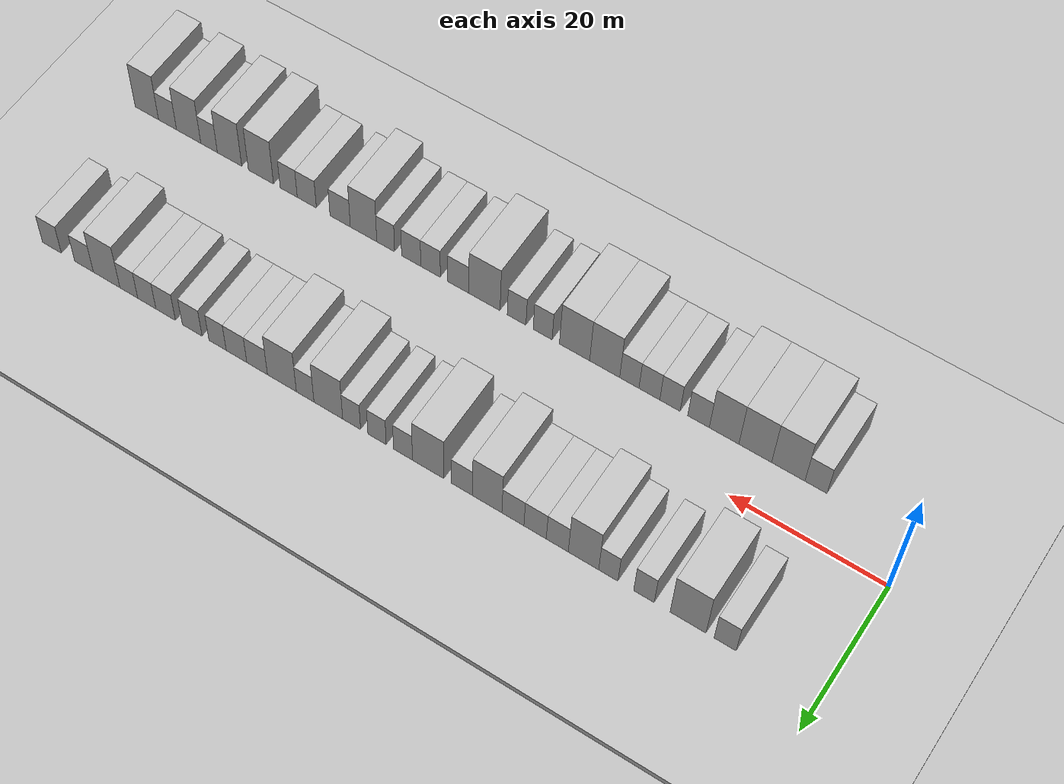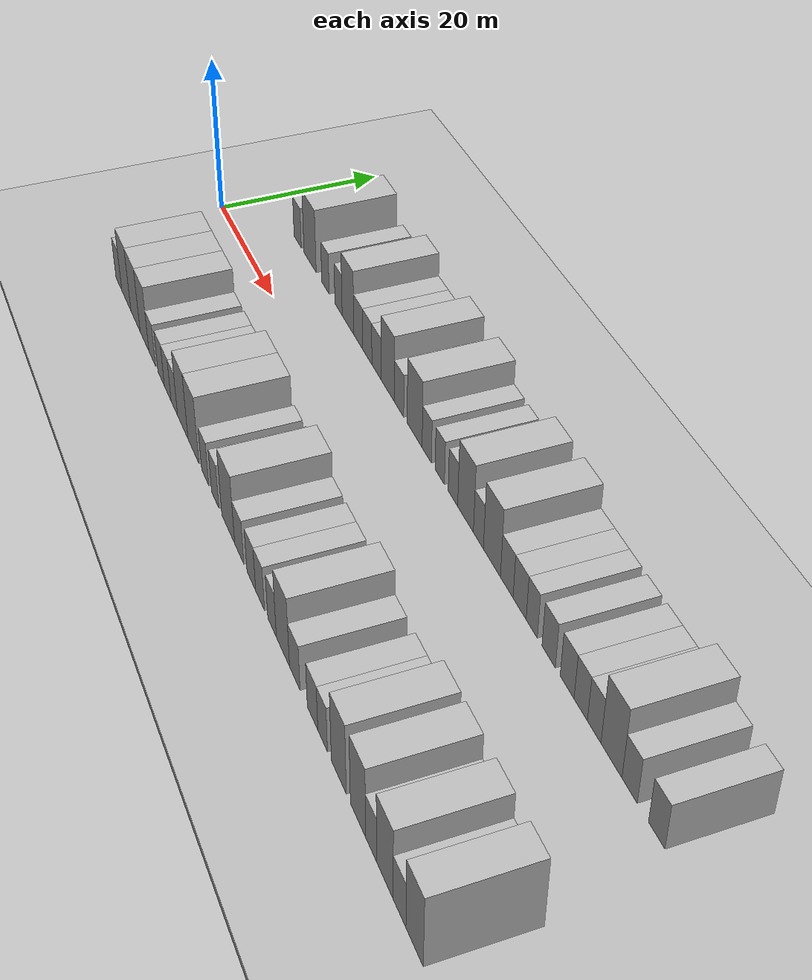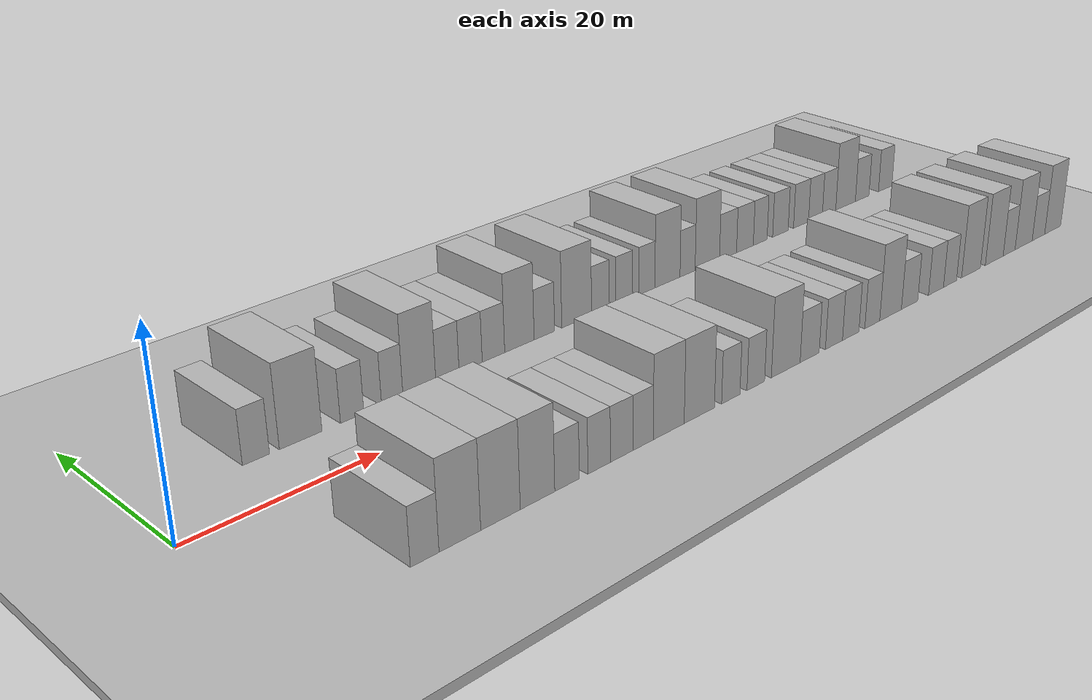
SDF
<sdf version="1.6">
 <world name="default">
  <include><name>ground_plane_1</name><uri>model://HANNAS_ground_plane</uri></include>
  <include>
   <name>ground_plane_2</name>
   <uri>model://HANNAS_ground_plane</uri>
   <pose>100 0 0  0 0 0</pose>
  </include>
  <model name="building_1">
   <static>1</static>
   <pose>11.3619 11.0000 0 0.000000 0.000000 1.570796</pose>
   <link name="link">
    <pose>0 0 3.00 0 0 0</pose>
    <collision name="collision"><geometry><box><size>10.0000 2.7237 6.0000</size></box></geometry></collision>
    <visual name="visual">
     <cast_shadows>0</cast_shadows>
     <geometry><box><size>10.0000 2.7237 6.0000</size></box></geometry>
     <material>
      <script>
       <uri>model://HANNAS_wall/materials/scripts</uri>
       <uri>model://HANNAS_wall/materials/textures</uri>
       <name>vrc/HANNAS_wall</name>
      </script>
     </material>
    </visual>
   </link>
  </model>
  <model name="building_2">
   <static>1</static>
   <pose>15.9564 11.0000 0 0.000000 0.000000 1.570796</pose>
   <link name="link">
    <pose>0 0 4.50 0 0 0</pose>
    <collision name="collision"><geometry><box><size>10.0000 4.4653 9.0000</size></box></geometry></collision>
    <visual name="visual">
     <cast_shadows>0</cast_shadows>
     <geometry><box><size>10.0000 4.4653 9.0000</size></box></geometry>
     <material>
      <script>
       <uri>model://HANNAS_wall/materials/scripts</uri>
       <uri>model://HANNAS_wall/materials/textures</uri>
       <name>vrc/HANNAS_wall</name>
      </script>
     </material>
    </visual>
   </link>
  </model>
  <model name="building_3">
   <static>1</static>
   <pose>21.4835 11.0000 0 0.000000 0.000000 1.570796</pose>
   <link name="link">
    <pose>0 0 3.00 0 0 0</pose>
    <collision name="collision"><geometry><box><size>10.0000 2.5890 6.0000</size></box></geometry></collision>
    <visual name="visual">
     <cast_shadows>0</cast_shadows>
     <geometry><box><size>10.0000 2.5890 6.0000</size></box></geometry>
     <material>
      <script>
       <uri>model://HANNAS_wall/materials/scripts</uri>
       <uri>model://HANNAS_wall/materials/textures</uri>
       <name>vrc/HANNAS_wall</name>
      </script>
     </material>
    </visual>
   </link>
  </model>
  <model name="building_4">
   <static>1</static>
   <pose>26.0084 11.0000 0 0.000000 0.000000 1.570796</pose>
   <link name="link">
    <pose>0 0 3.00 0 0 0</pose>
    <collision name="collision"><geometry><box><size>10.0000 2.4608 6.0000</size></box></geometry></collision>
    <visual name="visual">
     <cast_shadows>0</cast_shadows>
     <geometry><box><size>10.0000 2.4608 6.0000</size></box></geometry>
     <material>
      <script>
       <uri>model://HANNAS_wall/materials/scripts</uri>
       <uri>model://HANNAS_wall/materials/textures</uri>
       <name>vrc/HANNAS_wall</name>
      </script>
     </material>
    </visual>
   </link>
  </model>
  <model name="building_5">
   <static>1</static>
   <pose>29.1895 11.0000 0 0.000000 0.000000 1.570796</pose>
   <link name="link">
    <pose>0 0 4.50 0 0 0</pose>
    <collision name="collision"><geometry><box><size>10.0000 3.9013 9.0000</size></box></geometry></collision>
    <visual name="visual">
     <cast_shadows>0</cast_shadows>
     <geometry><box><size>10.0000 3.9013 9.0000</size></box></geometry>
     <material>
      <script>
       <uri>model://HANNAS_wall/materials/scripts</uri>
       <uri>model://HANNAS_wall/materials/textures</uri>
       <name>vrc/HANNAS_wall</name>
      </script>
     </material>
    </visual>
   </link>
  </model>
  <model name="building_6">
   <static>1</static>
   <pose>32.5640 11.0000 0 0.000000 0.000000 1.570796</pose>
   <link name="link">
    <pose>0 0 3.00 0 0 0</pose>
    <collision name="collision"><geometry><box><size>10.0000 2.8478 6.0000</size></box></geometry></collision>
    <visual name="visual">
     <cast_shadows>0</cast_shadows>
     <geometry><box><size>10.0000 2.8478 6.0000</size></box></geometry>
     <material>
      <script>
       <uri>model://HANNAS_wall/materials/scripts</uri>
       <uri>model://HANNAS_wall/materials/textures</uri>
       <name>vrc/HANNAS_wall</name>
      </script>
     </material>
    </visual>
   </link>
  </model>
  <model name="building_7">
   <static>1</static>
   <pose>35.4418 11.0000 0 0.000000 0.000000 1.570796</pose>
   <link name="link">
    <pose>0 0 3.00 0 0 0</pose>
    <collision name="collision"><geometry><box><size>10.0000 2.9078 6.0000</size></box></geometry></collision>
    <visual name="visual">
     <cast_shadows>0</cast_shadows>
     <geometry><box><size>10.0000 2.9078 6.0000</size></box></geometry>
     <material>
      <script>
       <uri>model://HANNAS_wall/materials/scripts</uri>
       <uri>model://HANNAS_wall/materials/textures</uri>
       <name>vrc/HANNAS_wall</name>
      </script>
     </material>
    </visual>
   </link>
  </model>
  <model name="building_8">
   <static>1</static>
   <pose>38.3424 11.0000 0 0.000000 0.000000 1.570796</pose>
   <link name="link">
    <pose>0 0 3.00 0 0 0</pose>
    <collision name="collision"><geometry><box><size>10.0000 2.8935 6.0000</size></box></geometry></collision>
    <visual name="visual">
     <cast_shadows>0</cast_shadows>
     <geometry><box><size>10.0000 2.8935 6.0000</size></box></geometry>
     <material>
      <script>
       <uri>model://HANNAS_wall/materials/scripts</uri>
       <uri>model://HANNAS_wall/materials/textures</uri>
       <name>vrc/HANNAS_wall</name>
      </script>
     </material>
    </visual>
   </link>
  </model>
  <model name="building_9">
   <static>1</static>
   <pose>41.7459 11.0000 0 0.000000 0.000000 1.570796</pose>
   <link name="link">
    <pose>0 0 4.50 0 0 0</pose>
    <collision name="collision"><geometry><box><size>10.0000 3.9136 9.0000</size></box></geometry></collision>
    <visual name="visual">
     <cast_shadows>0</cast_shadows>
     <geometry><box><size>10.0000 3.9136 9.0000</size></box></geometry>
     <material>
      <script>
       <uri>model://HANNAS_wall/materials/scripts</uri>
       <uri>model://HANNAS_wall/materials/textures</uri>
       <name>vrc/HANNAS_wall</name>
      </script>
     </material>
    </visual>
   </link>
  </model>
  <model name="building_10">
   <static>1</static>
   <pose>45.0957 11.0000 0 0.000000 0.000000 1.570796</pose>
   <link name="link">
    <pose>0 0 3.00 0 0 0</pose>
    <collision name="collision"><geometry><box><size>10.0000 2.7859 6.0000</size></box></geometry></collision>
    <visual name="visual">
     <cast_shadows>0</cast_shadows>
     <geometry><box><size>10.0000 2.7859 6.0000</size></box></geometry>
     <material>
      <script>
       <uri>model://HANNAS_wall/materials/scripts</uri>
       <uri>model://HANNAS_wall/materials/textures</uri>
       <name>vrc/HANNAS_wall</name>
      </script>
     </material>
    </visual>
   </link>
  </model>
  <model name="building_11">
   <static>1</static>
   <pose>49.6018 11.0000 0 0.000000 0.000000 1.570796</pose>
   <link name="link">
    <pose>0 0 4.50 0 0 0</pose>
    <collision name="collision"><geometry><box><size>10.0000 4.2262 9.0000</size></box></geometry></collision>
    <visual name="visual">
     <cast_shadows>0</cast_shadows>
     <geometry><box><size>10.0000 4.2262 9.0000</size></box></geometry>
     <material>
      <script>
       <uri>model://HANNAS_wall/materials/scripts</uri>
       <uri>model://HANNAS_wall/materials/textures</uri>
       <name>vrc/HANNAS_wall</name>
      </script>
     </material>
    </visual>
   </link>
  </model>
  <model name="building_12">
   <static>1</static>
   <pose>52.9961 11.0000 0 0.000000 0.000000 1.570796</pose>
   <link name="link">
    <pose>0 0 3.00 0 0 0</pose>
    <collision name="collision"><geometry><box><size>10.0000 2.5625 6.0000</size></box></geometry></collision>
    <visual name="visual">
     <cast_shadows>0</cast_shadows>
     <geometry><box><size>10.0000 2.5625 6.0000</size></box></geometry>
     <material>
      <script>
       <uri>model://HANNAS_wall/materials/scripts</uri>
       <uri>model://HANNAS_wall/materials/textures</uri>
       <name>vrc/HANNAS_wall</name>
      </script>
     </material>
    </visual>
   </link>
  </model>
  <model name="building_13">
   <static>1</static>
   <pose>56.5271 11.0000 0 0.000000 0.000000 1.570796</pose>
   <link name="link">
    <pose>0 0 3.00 0 0 0</pose>
    <collision name="collision"><geometry><box><size>10.0000 2.4995 6.0000</size></box></geometry></collision>
    <visual name="visual">
     <cast_shadows>0</cast_shadows>
     <geometry><box><size>10.0000 2.4995 6.0000</size></box></geometry>
     <material>
      <script>
       <uri>model://HANNAS_wall/materials/scripts</uri>
       <uri>model://HANNAS_wall/materials/textures</uri>
       <name>vrc/HANNAS_wall</name>
      </script>
     </material>
    </visual>
   </link>
  </model>
  <model name="building_14">
   <static>1</static>
   <pose>60.0050 11.0000 0 0.000000 0.000000 1.570796</pose>
   <link name="link">
    <pose>0 0 3.00 0 0 0</pose>
    <collision name="collision"><geometry><box><size>10.0000 2.4562 6.0000</size></box></geometry></collision>
    <visual name="visual">
     <cast_shadows>0</cast_shadows>
     <geometry><box><size>10.0000 2.4562 6.0000</size></box></geometry>
     <material>
      <script>
       <uri>model://HANNAS_wall/materials/scripts</uri>
       <uri>model://HANNAS_wall/materials/textures</uri>
       <name>vrc/HANNAS_wall</name>
      </script>
     </material>
    </visual>
   </link>
  </model>
  <model name="building_15">
   <static>1</static>
   <pose>63.2275 11.0000 0 0.000000 0.000000 1.570796</pose>
   <link name="link">
    <pose>0 0 4.50 0 0 0</pose>
    <collision name="collision"><geometry><box><size>10.0000 3.9888 9.0000</size></box></geometry></collision>
    <visual name="visual">
     <cast_shadows>0</cast_shadows>
     <geometry><box><size>10.0000 3.9888 9.0000</size></box></geometry>
     <material>
      <script>
       <uri>model://HANNAS_wall/materials/scripts</uri>
       <uri>model://HANNAS_wall/materials/textures</uri>
       <name>vrc/HANNAS_wall</name>
      </script>
     </material>
    </visual>
   </link>
  </model>
  <model name="building_16">
   <static>1</static>
   <pose>66.4500 11.0000 0 0.000000 0.000000 1.570796</pose>
   <link name="link">
    <pose>0 0 3.00 0 0 0</pose>
    <collision name="collision"><geometry><box><size>10.0000 2.4563 6.0000</size></box></geometry></collision>
    <visual name="visual">
     <cast_shadows>0</cast_shadows>
     <geometry><box><size>10.0000 2.4563 6.0000</size></box></geometry>
     <material>
      <script>
       <uri>model://HANNAS_wall/materials/scripts</uri>
       <uri>model://HANNAS_wall/materials/textures</uri>
       <name>vrc/HANNAS_wall</name>
      </script>
     </material>
    </visual>
   </link>
  </model>
  <model name="building_17">
   <static>1</static>
   <pose>69.7121 11.0000 0 0.000000 0.000000 1.570796</pose>
   <link name="link">
    <pose>0 0 4.50 0 0 0</pose>
    <collision name="collision"><geometry><box><size>10.0000 4.0678 9.0000</size></box></geometry></collision>
    <visual name="visual">
     <cast_shadows>0</cast_shadows>
     <geometry><box><size>10.0000 4.0678 9.0000</size></box></geometry>
     <material>
      <script>
       <uri>model://HANNAS_wall/materials/scripts</uri>
       <uri>model://HANNAS_wall/materials/textures</uri>
       <name>vrc/HANNAS_wall</name>
      </script>
     </material>
    </visual>
   </link>
  </model>
  <model name="building_18">
   <static>1</static>
   <pose>73.2113 11.0000 0 0.000000 0.000000 1.570796</pose>
   <link name="link">
    <pose>0 0 3.00 0 0 0</pose>
    <collision name="collision"><geometry><box><size>10.0000 2.9305 6.0000</size></box></geometry></collision>
    <visual name="visual">
     <cast_shadows>0</cast_shadows>
     <geometry><box><size>10.0000 2.9305 6.0000</size></box></geometry>
     <material>
      <script>
       <uri>model://HANNAS_wall/materials/scripts</uri>
       <uri>model://HANNAS_wall/materials/textures</uri>
       <name>vrc/HANNAS_wall</name>
      </script>
     </material>
    </visual>
   </link>
  </model>
  <model name="building_19">
   <static>1</static>
   <pose>76.1501 11.0000 0 0.000000 0.000000 1.570796</pose>
   <link name="link">
    <pose>0 0 3.00 0 0 0</pose>
    <collision name="collision"><geometry><box><size>10.0000 2.9472 6.0000</size></box></geometry></collision>
    <visual name="visual">
     <cast_shadows>0</cast_shadows>
     <geometry><box><size>10.0000 2.9472 6.0000</size></box></geometry>
     <material>
      <script>
       <uri>model://HANNAS_wall/materials/scripts</uri>
       <uri>model://HANNAS_wall/materials/textures</uri>
       <name>vrc/HANNAS_wall</name>
      </script>
     </material>
    </visual>
   </link>
  </model>
  <model name="building_20">
   <static>1</static>
   <pose>78.8567 11.0000 0 0.000000 0.000000 1.570796</pose>
   <link name="link">
    <pose>0 0 3.00 0 0 0</pose>
    <collision name="collision"><geometry><box><size>10.0000 2.4658 6.0000</size></box></geometry></collision>
    <visual name="visual">
     <cast_shadows>0</cast_shadows>
     <geometry><box><size>10.0000 2.4658 6.0000</size></box></geometry>
     <material>
      <script>
       <uri>model://HANNAS_wall/materials/scripts</uri>
       <uri>model://HANNAS_wall/materials/textures</uri>
       <name>vrc/HANNAS_wall</name>
      </script>
     </material>
    </visual>
   </link>
  </model>
  <model name="building_21">
   <static>1</static>
   <pose>82.5169 11.0000 0 0.000000 0.000000 1.570796</pose>
   <link name="link">
    <pose>0 0 3.00 0 0 0</pose>
    <collision name="collision"><geometry><box><size>10.0000 2.8547 6.0000</size></box></geometry></collision>
    <visual name="visual">
     <cast_shadows>0</cast_shadows>
     <geometry><box><size>10.0000 2.8547 6.0000</size></box></geometry>
     <material>
      <script>
       <uri>model://HANNAS_wall/materials/scripts</uri>
       <uri>model://HANNAS_wall/materials/textures</uri>
       <name>vrc/HANNAS_wall</name>
      </script>
     </material>
    </visual>
   </link>
  </model>
  <model name="building_22">
   <static>1</static>
   <pose>86.3643 11.0000 0 0.000000 0.000000 1.570796</pose>
   <link name="link">
    <pose>0 0 3.00 0 0 0</pose>
    <collision name="collision"><geometry><box><size>10.0000 2.8400 6.0000</size></box></geometry></collision>
    <visual name="visual">
     <cast_shadows>0</cast_shadows>
     <geometry><box><size>10.0000 2.8400 6.0000</size></box></geometry>
     <material>
      <script>
       <uri>model://HANNAS_wall/materials/scripts</uri>
       <uri>model://HANNAS_wall/materials/textures</uri>
       <name>vrc/HANNAS_wall</name>
      </script>
     </material>
    </visual>
   </link>
  </model>
  <model name="building_23">
   <static>1</static>
   <pose>89.1174 11.0000 0 0.000000 0.000000 1.570796</pose>
   <link name="link">
    <pose>0 0 3.00 0 0 0</pose>
    <collision name="collision"><geometry><box><size>10.0000 2.6662 6.0000</size></box></geometry></collision>
    <visual name="visual">
     <cast_shadows>0</cast_shadows>
     <geometry><box><size>10.0000 2.6662 6.0000</size></box></geometry>
     <material>
      <script>
       <uri>model://HANNAS_wall/materials/scripts</uri>
       <uri>model://HANNAS_wall/materials/textures</uri>
       <name>vrc/HANNAS_wall</name>
      </script>
     </material>
    </visual>
   </link>
  </model>
  <model name="building_24">
   <static>1</static>
   <pose>91.7686 11.0000 0 0.000000 0.000000 1.570796</pose>
   <link name="link">
    <pose>0 0 3.00 0 0 0</pose>
    <collision name="collision"><geometry><box><size>10.0000 2.6361 6.0000</size></box></geometry></collision>
    <visual name="visual">
     <cast_shadows>0</cast_shadows>
     <geometry><box><size>10.0000 2.6361 6.0000</size></box></geometry>
     <material>
      <script>
       <uri>model://HANNAS_wall/materials/scripts</uri>
       <uri>model://HANNAS_wall/materials/textures</uri>
       <name>vrc/HANNAS_wall</name>
      </script>
     </material>
    </visual>
   </link>
  </model>
  <model name="building_25">
   <static>1</static>
   <pose>95.0623 11.0000 0 0.000000 0.000000 1.570796</pose>
   <link name="link">
    <pose>0 0 4.50 0 0 0</pose>
    <collision name="collision"><geometry><box><size>10.0000 3.9512 9.0000</size></box></geometry></collision>
    <visual name="visual">
     <cast_shadows>0</cast_shadows>
     <geometry><box><size>10.0000 3.9512 9.0000</size></box></geometry>
     <material>
      <script>
       <uri>model://HANNAS_wall/materials/scripts</uri>
       <uri>model://HANNAS_wall/materials/textures</uri>
       <name>vrc/HANNAS_wall</name>
      </script>
     </material>
    </visual>
   </link>
  </model>
  <model name="building_26">
   <static>1</static>
   <pose>98.4367 11.0000 0 0.000000 0.000000 1.570796</pose>
   <link name="link">
    <pose>0 0 3.00 0 0 0</pose>
    <collision name="collision"><geometry><box><size>10.0000 2.7976 6.0000</size></box></geometry></collision>
    <visual name="visual">
     <cast_shadows>0</cast_shadows>
     <geometry><box><size>10.0000 2.7976 6.0000</size></box></geometry>
     <material>
      <script>
       <uri>model://HANNAS_wall/materials/scripts</uri>
       <uri>model://HANNAS_wall/materials/textures</uri>
       <name>vrc/HANNAS_wall</name>
      </script>
     </material>
    </visual>
   </link>
  </model>
  <model name="building_27">
   <static>1</static>
   <pose>103.2614 11.0000 0 0.000000 0.000000 1.570796</pose>
   <link name="link">
    <pose>0 0 3.00 0 0 0</pose>
    <collision name="collision"><geometry><box><size>10.0000 2.8519 6.0000</size></box></geometry></collision>
    <visual name="visual">
     <cast_shadows>0</cast_shadows>
     <geometry><box><size>10.0000 2.8519 6.0000</size></box></geometry>
     <material>
      <script>
       <uri>model://HANNAS_wall/materials/scripts</uri>
       <uri>model://HANNAS_wall/materials/textures</uri>
       <name>vrc/HANNAS_wall</name>
      </script>
     </material>
    </visual>
   </link>
  </model>
  <model name="building_56">
   <static>1</static>
   <pose>12.4048 -11.0000 0 0.000000 0.000000 1.570796</pose>
   <link name="link">
    <pose>0 0 3.00 0 0 0</pose>
    <collision name="collision"><geometry><box><size>10.0000 2.8097 6.0000</size></box></geometry></collision>
    <visual name="visual">
     <cast_shadows>0</cast_shadows>
     <geometry><box><size>10.0000 2.8097 6.0000</size></box></geometry>
     <material>
      <script>
       <uri>model://HANNAS_wall/materials/scripts</uri>
       <uri>model://HANNAS_wall/materials/textures</uri>
       <name>vrc/HANNAS_wall</name>
      </script>
     </material>
    </visual>
   </link>
  </model>
  <model name="building_57">
   <static>1</static>
   <pose>15.9327 -11.0000 0 0.000000 0.000000 1.570796</pose>
   <link name="link">
    <pose>0 0 4.50 0 0 0</pose>
    <collision name="collision"><geometry><box><size>10.0000 4.2461 9.0000</size></box></geometry></collision>
    <visual name="visual">
     <cast_shadows>0</cast_shadows>
     <geometry><box><size>10.0000 4.2461 9.0000</size></box></geometry>
     <material>
      <script>
       <uri>model://HANNAS_wall/materials/scripts</uri>
       <uri>model://HANNAS_wall/materials/textures</uri>
       <name>vrc/HANNAS_wall</name>
      </script>
     </material>
    </visual>
   </link>
  </model>
  <model name="building_58">
   <static>1</static>
   <pose>20.1625 -11.0000 0 0.000000 0.000000 1.570796</pose>
   <link name="link">
    <pose>0 0 4.50 0 0 0</pose>
    <collision name="collision"><geometry><box><size>10.0000 4.2135 9.0000</size></box></geometry></collision>
    <visual name="visual">
     <cast_shadows>0</cast_shadows>
     <geometry><box><size>10.0000 4.2135 9.0000</size></box></geometry>
     <material>
      <script>
       <uri>model://HANNAS_wall/materials/scripts</uri>
       <uri>model://HANNAS_wall/materials/textures</uri>
       <name>vrc/HANNAS_wall</name>
      </script>
     </material>
    </visual>
   </link>
  </model>
  <model name="building_59">
   <static>1</static>
   <pose>24.1878 -11.0000 0 0.000000 0.000000 1.570796</pose>
   <link name="link">
    <pose>0 0 4.50 0 0 0</pose>
    <collision name="collision"><geometry><box><size>10.0000 3.8370 9.0000</size></box></geometry></collision>
    <visual name="visual">
     <cast_shadows>0</cast_shadows>
     <geometry><box><size>10.0000 3.8370 9.0000</size></box></geometry>
     <material>
      <script>
       <uri>model://HANNAS_wall/materials/scripts</uri>
       <uri>model://HANNAS_wall/materials/textures</uri>
       <name>vrc/HANNAS_wall</name>
      </script>
     </material>
    </visual>
   </link>
  </model>
  <model name="building_60">
   <static>1</static>
   <pose>27.5183 -11.0000 0 0.000000 0.000000 1.570796</pose>
   <link name="link">
    <pose>0 0 3.00 0 0 0</pose>
    <collision name="collision"><geometry><box><size>10.0000 2.8242 6.0000</size></box></geometry></collision>
    <visual name="visual">
     <cast_shadows>0</cast_shadows>
     <geometry><box><size>10.0000 2.8242 6.0000</size></box></geometry>
     <material>
      <script>
       <uri>model://HANNAS_wall/materials/scripts</uri>
       <uri>model://HANNAS_wall/materials/textures</uri>
       <name>vrc/HANNAS_wall</name>
      </script>
     </material>
    </visual>
   </link>
  </model>
  <model name="building_61">
   <static>1</static>
   <pose>31.2732 -11.0000 0 0.000000 0.000000 1.570796</pose>
   <link name="link">
    <pose>0 0 3.00 0 0 0</pose>
    <collision name="collision"><geometry><box><size>10.0000 2.6855 6.0000</size></box></geometry></collision>
    <visual name="visual">
     <cast_shadows>0</cast_shadows>
     <geometry><box><size>10.0000 2.6855 6.0000</size></box></geometry>
     <material>
      <script>
       <uri>model://HANNAS_wall/materials/scripts</uri>
       <uri>model://HANNAS_wall/materials/textures</uri>
       <name>vrc/HANNAS_wall</name>
      </script>
     </material>
    </visual>
   </link>
  </model>
  <model name="building_62">
   <static>1</static>
   <pose>33.9993 -11.0000 0 0.000000 0.000000 1.570796</pose>
   <link name="link">
    <pose>0 0 3.00 0 0 0</pose>
    <collision name="collision"><geometry><box><size>10.0000 2.7667 6.0000</size></box></geometry></collision>
    <visual name="visual">
     <cast_shadows>0</cast_shadows>
     <geometry><box><size>10.0000 2.7667 6.0000</size></box></geometry>
     <material>
      <script>
       <uri>model://HANNAS_wall/materials/scripts</uri>
       <uri>model://HANNAS_wall/materials/textures</uri>
       <name>vrc/HANNAS_wall</name>
      </script>
     </material>
    </visual>
   </link>
  </model>
  <model name="building_63">
   <static>1</static>
   <pose>36.6693 -11.0000 0 0.000000 0.000000 1.570796</pose>
   <link name="link">
    <pose>0 0 3.00 0 0 0</pose>
    <collision name="collision"><geometry><box><size>10.0000 2.5733 6.0000</size></box></geometry></collision>
    <visual name="visual">
     <cast_shadows>0</cast_shadows>
     <geometry><box><size>10.0000 2.5733 6.0000</size></box></geometry>
     <material>
      <script>
       <uri>model://HANNAS_wall/materials/scripts</uri>
       <uri>model://HANNAS_wall/materials/textures</uri>
       <name>vrc/HANNAS_wall</name>
      </script>
     </material>
    </visual>
   </link>
  </model>
  <model name="building_64">
   <static>1</static>
   <pose>39.9777 -11.0000 0 0.000000 0.000000 1.570796</pose>
   <link name="link">
    <pose>0 0 4.50 0 0 0</pose>
    <collision name="collision"><geometry><box><size>10.0000 4.0435 9.0000</size></box></geometry></collision>
    <visual name="visual">
     <cast_shadows>0</cast_shadows>
     <geometry><box><size>10.0000 4.0435 9.0000</size></box></geometry>
     <material>
      <script>
       <uri>model://HANNAS_wall/materials/scripts</uri>
       <uri>model://HANNAS_wall/materials/textures</uri>
       <name>vrc/HANNAS_wall</name>
      </script>
     </material>
    </visual>
   </link>
  </model>
  <model name="building_65">
   <static>1</static>
   <pose>44.0484 -11.0000 0 0.000000 0.000000 1.570796</pose>
   <link name="link">
    <pose>0 0 4.50 0 0 0</pose>
    <collision name="collision"><geometry><box><size>10.0000 4.0979 9.0000</size></box></geometry></collision>
    <visual name="visual">
     <cast_shadows>0</cast_shadows>
     <geometry><box><size>10.0000 4.0979 9.0000</size></box></geometry>
     <material>
      <script>
       <uri>model://HANNAS_wall/materials/scripts</uri>
       <uri>model://HANNAS_wall/materials/textures</uri>
       <name>vrc/HANNAS_wall</name>
      </script>
     </material>
    </visual>
   </link>
  </model>
  <model name="building_66">
   <static>1</static>
   <pose>48.3936 -11.0000 0 0.000000 0.000000 1.570796</pose>
   <link name="link">
    <pose>0 0 3.00 0 0 0</pose>
    <collision name="collision"><geometry><box><size>10.0000 2.5927 6.0000</size></box></geometry></collision>
    <visual name="visual">
     <cast_shadows>0</cast_shadows>
     <geometry><box><size>10.0000 2.5927 6.0000</size></box></geometry>
     <material>
      <script>
       <uri>model://HANNAS_wall/materials/scripts</uri>
       <uri>model://HANNAS_wall/materials/textures</uri>
       <name>vrc/HANNAS_wall</name>
      </script>
     </material>
    </visual>
   </link>
  </model>
  <model name="building_67">
   <static>1</static>
   <pose>51.9815 -11.0000 0 0.000000 0.000000 1.570796</pose>
   <link name="link">
    <pose>0 0 3.00 0 0 0</pose>
    <collision name="collision"><geometry><box><size>10.0000 2.5831 6.0000</size></box></geometry></collision>
    <visual name="visual">
     <cast_shadows>0</cast_shadows>
     <geometry><box><size>10.0000 2.5831 6.0000</size></box></geometry>
     <material>
      <script>
       <uri>model://HANNAS_wall/materials/scripts</uri>
       <uri>model://HANNAS_wall/materials/textures</uri>
       <name>vrc/HANNAS_wall</name>
      </script>
     </material>
    </visual>
   </link>
  </model>
  <model name="building_68">
   <static>1</static>
   <pose>56.4591 -11.0000 0 0.000000 0.000000 1.570796</pose>
   <link name="link">
    <pose>0 0 4.50 0 0 0</pose>
    <collision name="collision"><geometry><box><size>10.0000 4.3722 9.0000</size></box></geometry></collision>
    <visual name="visual">
     <cast_shadows>0</cast_shadows>
     <geometry><box><size>10.0000 4.3722 9.0000</size></box></geometry>
     <material>
      <script>
       <uri>model://HANNAS_wall/materials/scripts</uri>
       <uri>model://HANNAS_wall/materials/textures</uri>
       <name>vrc/HANNAS_wall</name>
      </script>
     </material>
    </visual>
   </link>
  </model>
  <model name="building_69">
   <static>1</static>
   <pose>60.1402 -11.0000 0 0.000000 0.000000 1.570796</pose>
   <link name="link">
    <pose>0 0 3.00 0 0 0</pose>
    <collision name="collision"><geometry><box><size>10.0000 2.9900 6.0000</size></box></geometry></collision>
    <visual name="visual">
     <cast_shadows>0</cast_shadows>
     <geometry><box><size>10.0000 2.9900 6.0000</size></box></geometry>
     <material>
      <script>
       <uri>model://HANNAS_wall/materials/scripts</uri>
       <uri>model://HANNAS_wall/materials/textures</uri>
       <name>vrc/HANNAS_wall</name>
      </script>
     </material>
    </visual>
   </link>
  </model>
  <model name="building_70">
   <static>1</static>
   <pose>64.0206 -11.0000 0 0.000000 0.000000 1.570796</pose>
   <link name="link">
    <pose>0 0 3.00 0 0 0</pose>
    <collision name="collision"><geometry><box><size>10.0000 2.7708 6.0000</size></box></geometry></collision>
    <visual name="visual">
     <cast_shadows>0</cast_shadows>
     <geometry><box><size>10.0000 2.7708 6.0000</size></box></geometry>
     <material>
      <script>
       <uri>model://HANNAS_wall/materials/scripts</uri>
       <uri>model://HANNAS_wall/materials/textures</uri>
       <name>vrc/HANNAS_wall</name>
      </script>
     </material>
    </visual>
   </link>
  </model>
  <model name="building_71">
   <static>1</static>
   <pose>66.7695 -11.0000 0 0.000000 0.000000 1.570796</pose>
   <link name="link">
    <pose>0 0 3.00 0 0 0</pose>
    <collision name="collision"><geometry><box><size>10.0000 2.7269 6.0000</size></box></geometry></collision>
    <visual name="visual">
     <cast_shadows>0</cast_shadows>
     <geometry><box><size>10.0000 2.7269 6.0000</size></box></geometry>
     <material>
      <script>
       <uri>model://HANNAS_wall/materials/scripts</uri>
       <uri>model://HANNAS_wall/materials/textures</uri>
       <name>vrc/HANNAS_wall</name>
      </script>
     </material>
    </visual>
   </link>
  </model>
  <model name="building_72">
   <static>1</static>
   <pose>70.4110 -11.0000 0 0.000000 0.000000 1.570796</pose>
   <link name="link">
    <pose>0 0 3.00 0 0 0</pose>
    <collision name="collision"><geometry><box><size>10.0000 2.5562 6.0000</size></box></geometry></collision>
    <visual name="visual">
     <cast_shadows>0</cast_shadows>
     <geometry><box><size>10.0000 2.5562 6.0000</size></box></geometry>
     <material>
      <script>
       <uri>model://HANNAS_wall/materials/scripts</uri>
       <uri>model://HANNAS_wall/materials/textures</uri>
       <name>vrc/HANNAS_wall</name>
      </script>
     </material>
    </visual>
   </link>
  </model>
  <model name="building_73">
   <static>1</static>
   <pose>73.6029 -11.0000 0 0.000000 0.000000 1.570796</pose>
   <link name="link">
    <pose>0 0 4.50 0 0 0</pose>
    <collision name="collision"><geometry><box><size>10.0000 3.8276 9.0000</size></box></geometry></collision>
    <visual name="visual">
     <cast_shadows>0</cast_shadows>
     <geometry><box><size>10.0000 3.8276 9.0000</size></box></geometry>
     <material>
      <script>
       <uri>model://HANNAS_wall/materials/scripts</uri>
       <uri>model://HANNAS_wall/materials/textures</uri>
       <name>vrc/HANNAS_wall</name>
      </script>
     </material>
    </visual>
   </link>
  </model>
  <model name="building_74">
   <static>1</static>
   <pose>76.9932 -11.0000 0 0.000000 0.000000 1.570796</pose>
   <link name="link">
    <pose>0 0 3.00 0 0 0</pose>
    <collision name="collision"><geometry><box><size>10.0000 2.9531 6.0000</size></box></geometry></collision>
    <visual name="visual">
     <cast_shadows>0</cast_shadows>
     <geometry><box><size>10.0000 2.9531 6.0000</size></box></geometry>
     <material>
      <script>
       <uri>model://HANNAS_wall/materials/scripts</uri>
       <uri>model://HANNAS_wall/materials/textures</uri>
       <name>vrc/HANNAS_wall</name>
      </script>
     </material>
    </visual>
   </link>
  </model>
  <model name="building_75">
   <static>1</static>
   <pose>81.8774 -11.0000 0 0.000000 0.000000 1.570796</pose>
   <link name="link">
    <pose>0 0 3.00 0 0 0</pose>
    <collision name="collision"><geometry><box><size>10.0000 2.8153 6.0000</size></box></geometry></collision>
    <visual name="visual">
     <cast_shadows>0</cast_shadows>
     <geometry><box><size>10.0000 2.8153 6.0000</size></box></geometry>
     <material>
      <script>
       <uri>model://HANNAS_wall/materials/scripts</uri>
       <uri>model://HANNAS_wall/materials/textures</uri>
       <name>vrc/HANNAS_wall</name>
      </script>
     </material>
    </visual>
   </link>
  </model>
  <model name="building_76">
   <static>1</static>
   <pose>84.5424 -11.0000 0 0.000000 0.000000 1.570796</pose>
   <link name="link">
    <pose>0 0 3.00 0 0 0</pose>
    <collision name="collision"><geometry><box><size>10.0000 2.5147 6.0000</size></box></geometry></collision>
    <visual name="visual">
     <cast_shadows>0</cast_shadows>
     <geometry><box><size>10.0000 2.5147 6.0000</size></box></geometry>
     <material>
      <script>
       <uri>model://HANNAS_wall/materials/scripts</uri>
       <uri>model://HANNAS_wall/materials/textures</uri>
       <name>vrc/HANNAS_wall</name>
      </script>
     </material>
    </visual>
   </link>
  </model>
  <model name="building_77">
   <static>1</static>
   <pose>88.6724 -11.0000 0 0.000000 0.000000 1.570796</pose>
   <link name="link">
    <pose>0 0 4.50 0 0 0</pose>
    <collision name="collision"><geometry><box><size>10.0000 3.7453 9.0000</size></box></geometry></collision>
    <visual name="visual">
     <cast_shadows>0</cast_shadows>
     <geometry><box><size>10.0000 3.7453 9.0000</size></box></geometry>
     <material>
      <script>
       <uri>model://HANNAS_wall/materials/scripts</uri>
       <uri>model://HANNAS_wall/materials/textures</uri>
       <name>vrc/HANNAS_wall</name>
      </script>
     </material>
    </visual>
   </link>
  </model>
  <model name="building_78">
   <static>1</static>
   <pose>93.3825 -11.0000 0 0.000000 0.000000 1.570796</pose>
   <link name="link">
    <pose>0 0 4.50 0 0 0</pose>
    <collision name="collision"><geometry><box><size>10.0000 3.6747 9.0000</size></box></geometry></collision>
    <visual name="visual">
     <cast_shadows>0</cast_shadows>
     <geometry><box><size>10.0000 3.6747 9.0000</size></box></geometry>
     <material>
      <script>
       <uri>model://HANNAS_wall/materials/scripts</uri>
       <uri>model://HANNAS_wall/materials/textures</uri>
       <name>vrc/HANNAS_wall</name>
      </script>
     </material>
    </visual>
   </link>
  </model>
  <model name="building_79">
   <static>1</static>
   <pose>96.4767 -11.0000 0 0.000000 0.000000 1.570796</pose>
   <link name="link">
    <pose>0 0 3.00 0 0 0</pose>
    <collision name="collision"><geometry><box><size>10.0000 2.5138 6.0000</size></box></geometry></collision>
    <visual name="visual">
     <cast_shadows>0</cast_shadows>
     <geometry><box><size>10.0000 2.5138 6.0000</size></box></geometry>
     <material>
      <script>
       <uri>model://HANNAS_wall/materials/scripts</uri>
       <uri>model://HANNAS_wall/materials/textures</uri>
       <name>vrc/HANNAS_wall</name>
      </script>
     </material>
    </visual>
   </link>
  </model>
  <model name="building_80">
   <static>1</static>
   <pose>99.5844 -11.0000 0 0.000000 0.000000 1.570796</pose>
   <link name="link">
    <pose>0 0 4.50 0 0 0</pose>
    <collision name="collision"><geometry><box><size>10.0000 3.7017 9.0000</size></box></geometry></collision>
    <visual name="visual">
     <cast_shadows>0</cast_shadows>
     <geometry><box><size>10.0000 3.7017 9.0000</size></box></geometry>
     <material>
      <script>
       <uri>model://HANNAS_wall/materials/scripts</uri>
       <uri>model://HANNAS_wall/materials/textures</uri>
       <name>vrc/HANNAS_wall</name>
      </script>
     </material>
    </visual>
   </link>
  </model>
  <model name="building_81">
   <static>1</static>
   <pose>102.8173 -11.0000 0 0.000000 0.000000 1.570796</pose>
   <link name="link">
    <pose>0 0 3.00 0 0 0</pose>
    <collision name="collision"><geometry><box><size>10.0000 2.7641 6.0000</size></box></geometry></collision>
    <visual name="visual">
     <cast_shadows>0</cast_shadows>
     <geometry><box><size>10.0000 2.7641 6.0000</size></box></geometry>
     <material>
      <script>
       <uri>model://HANNAS_wall/materials/scripts</uri>
       <uri>model://HANNAS_wall/materials/textures</uri>
       <name>vrc/HANNAS_wall</name>
      </script>
     </material>
    </visual>
   </link>
  </model>
  <model name="building_82">
   <static>1</static>
   <pose>106.0073 -11.0000 0 0.000000 0.000000 1.570796</pose>
   <link name="link">
    <pose>0 0 4.50 0 0 0</pose>
    <collision name="collision"><geometry><box><size>10.0000 3.6158 9.0000</size></box></geometry></collision>
    <visual name="visual">
     <cast_shadows>0</cast_shadows>
     <geometry><box><size>10.0000 3.6158 9.0000</size></box></geometry>
     <material>
      <script>
       <uri>model://HANNAS_wall/materials/scripts</uri>
       <uri>model://HANNAS_wall/materials/textures</uri>
       <name>vrc/HANNAS_wall</name>
      </script>
     </material>
    </visual>
   </link>
  </model>
 </world>
</sdf>
